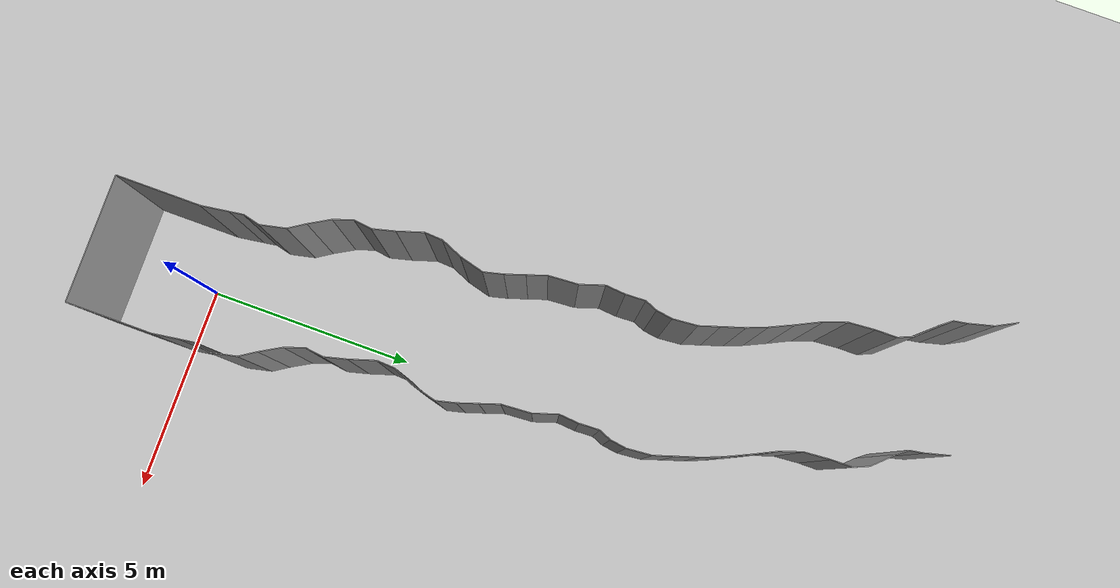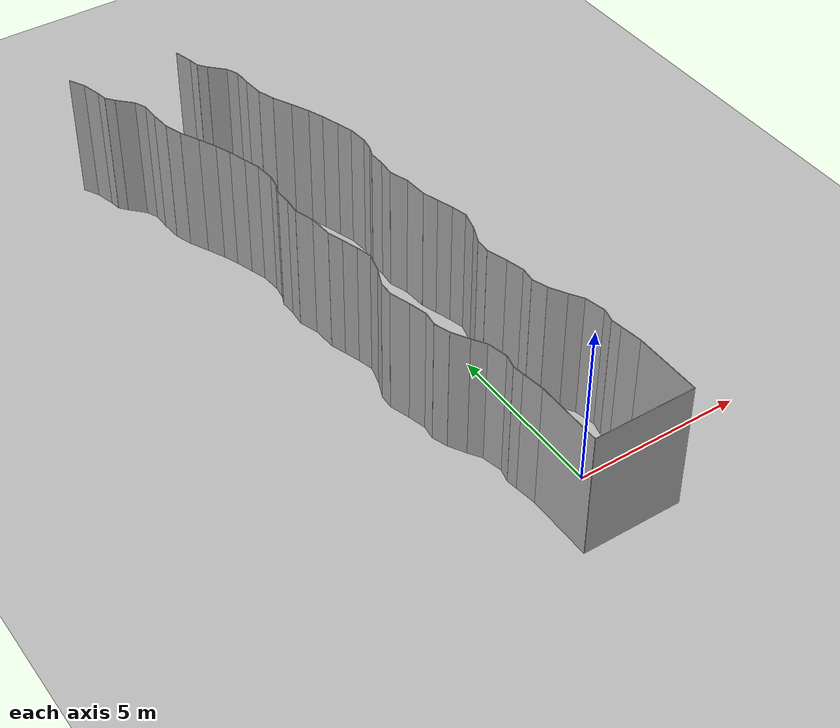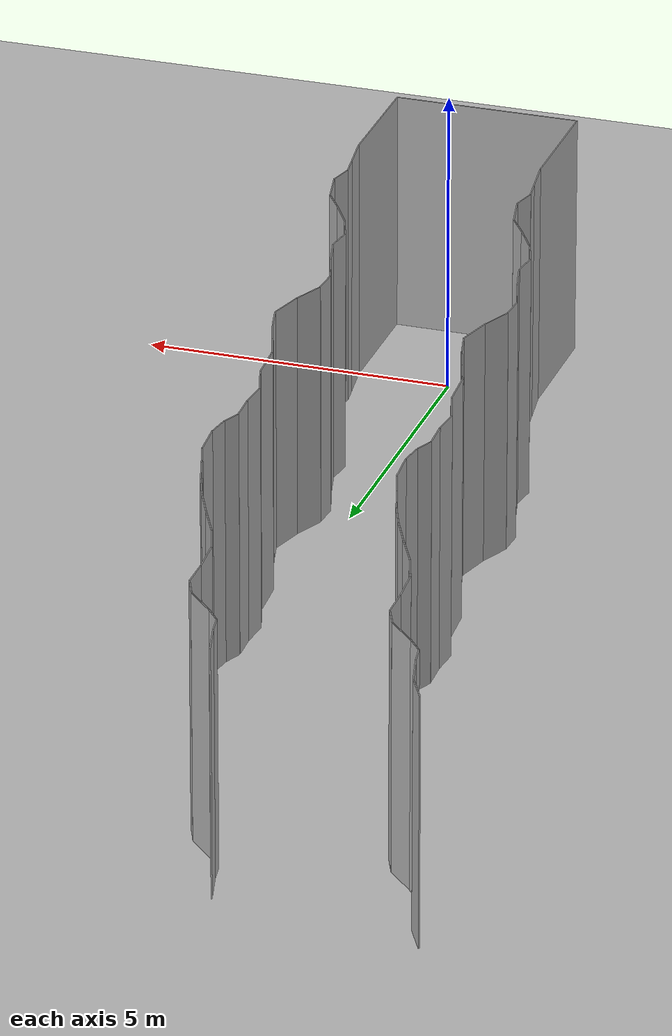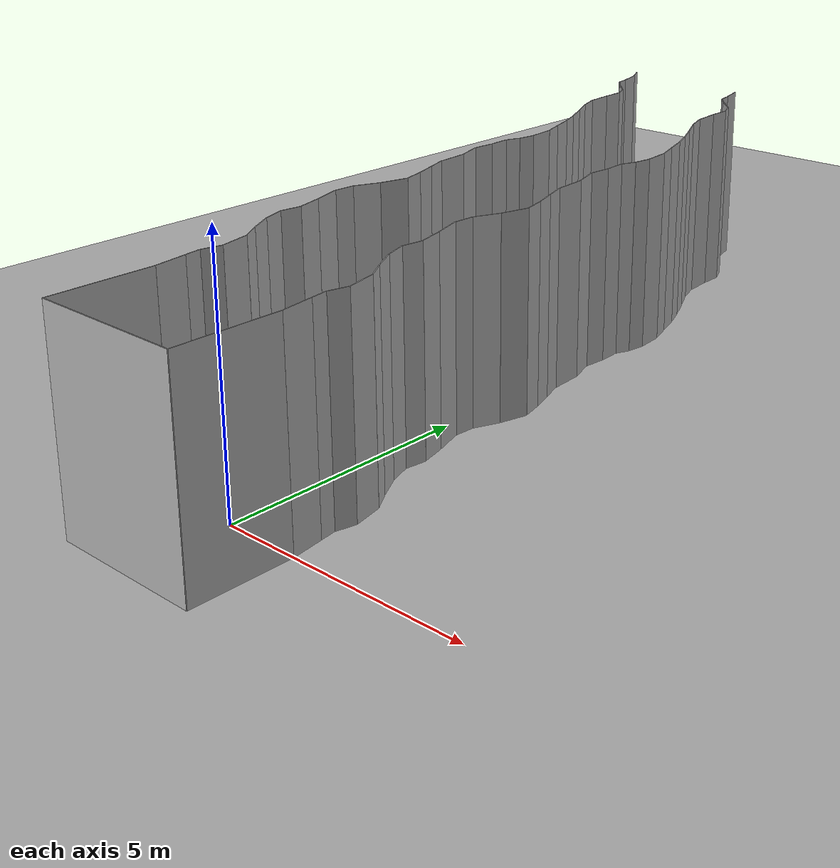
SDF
<sdf version="1.6">
 <world name="default">
  <model name="ground_plane">
   <static>1</static>
   <link name="link">
    <collision name="collision">
     <geometry><plane><normal>0 0 1</normal><size>200 200</size></plane></geometry>
     <surface><friction><ode><mu>100</mu><mu2>50</mu2></ode></friction></surface>
    </collision>
    <visual name="visual">
     <cast_shadows>0</cast_shadows>
     <geometry><plane><normal>0 0 1</normal><size>200 200</size></plane></geometry>
     <material>
      <script><uri>file://media/materials/scripts/gazebo.material</uri><name>Gazebo/Grey</name></script>
     </material>
    </visual>
   </link>
   <pose>0 100 0 0 -0 0</pose>
  </model>
  <model name="wall_back">
   <static>1</static>
   <pose>0.0 -2 2 0.0 0 0.0</pose>
   <link name="link">
    <collision name="collision"><geometry><box><size>3 0.02 4</size></box></geometry></collision>
    <visual name="visual">
     <material>
      <script><name>Gazebo/Grey</name><uri>file://media/materials/scripts/gazebo.material</uri></script>
     </material>
     <geometry><box><size>3 0.02 4</size></box></geometry>
    </visual>
   </link>
  </model>
  <model name="wall_left">
   <static>1</static>
   <pose>1.5 -1 2 0 0 0.00</pose>
   <link name="link">
    <collision name="collision"><geometry><box><size>0.02 2 4</size></box></geometry></collision>
    <visual name="visual">
     <material>
      <script><name>Gazebo/Grey</name><uri>file://media/materials/scripts/gazebo.material</uri></script>
     </material>
     <geometry><box><size>0.02 2 4</size></box></geometry>
    </visual>
   </link>
  </model>
  <model name="wall_right">
   <static>1</static>
   <pose>-1.5 -1 2 0 0 0.00</pose>
   <link name="link">
    <collision name="collision"><geometry><box><size>0.02 2 4</size></box></geometry></collision>
    <visual name="visual">
     <material>
      <script><name>Gazebo/Grey</name><uri>file://media/materials/scripts/gazebo.material</uri></script>
     </material>
     <geometry><box><size>0.02 2 4</size></box></geometry>
    </visual>
   </link>
  </model>
  <model name="wall_0">
   <static>1</static>
   <pose>-1.5460609407152022 0.32296351632783216 2 0 0 0.1416642949289696</pose>
   <link name="link">
    <collision name="collision"><geometry><box><size>0.02 0.652463158005 4</size></box></geometry></collision>
    <visual name="visual">
     <material>
      <script><name>Gazebo/Grey</name><uri>file://media/materials/scripts/gazebo.material</uri></script>
     </material>
     <geometry><box><size>0.02 0.652463158005 4</size></box></geometry>
    </visual>
   </link>
  </model>
  <model name="wall_1">
   <static>1</static>
   <pose>1.4539390592847978 0.32296351632783216 2 0 0 0.1416642949289696</pose>
   <link name="link">
    <collision name="collision"><geometry><box><size>0.02 0.652463158005 4</size></box></geometry></collision>
    <visual name="visual">
     <material>
      <script><name>Gazebo/Grey</name><uri>file://media/materials/scripts/gazebo.material</uri></script>
     </material>
     <geometry><box><size>0.02 0.652463158005 4</size></box></geometry>
    </visual>
   </link>
  </model>
  <model name="wall_2">
   <static>1</static>
   <pose>-1.6148269686521954 0.8086788979498543 2 0 0 0.13861276403303396</pose>
   <link name="link">
    <collision name="collision"><geometry><box><size>0.02 0.328655994271 4</size></box></geometry></collision>
    <visual name="visual">
     <material>
      <script><name>Gazebo/Grey</name><uri>file://media/materials/scripts/gazebo.material</uri></script>
     </material>
     <geometry><box><size>0.02 0.328655994271 4</size></box></geometry>
    </visual>
   </link>
  </model>
  <model name="wall_3">
   <static>1</static>
   <pose>1.3851730313478046 0.8086788979498543 2 0 0 0.13861276403303396</pose>
   <link name="link">
    <collision name="collision"><geometry><box><size>0.02 0.328655994271 4</size></box></geometry></collision>
    <visual name="visual">
     <material>
      <script><name>Gazebo/Grey</name><uri>file://media/materials/scripts/gazebo.material</uri></script>
     </material>
     <geometry><box><size>0.02 0.328655994271 4</size></box></geometry>
    </visual>
   </link>
  </model>
  <model name="wall_4">
   <static>1</static>
   <pose>-1.589722143437449 1.1666687135756386 2 0 0 -0.24015427331830977</pose>
   <link name="link">
    <collision name="collision"><geometry><box><size>0.02 0.402013158874 4</size></box></geometry></collision>
    <visual name="visual">
     <material>
      <script><name>Gazebo/Grey</name><uri>file://media/materials/scripts/gazebo.material</uri></script>
     </material>
     <geometry><box><size>0.02 0.402013158874 4</size></box></geometry>
    </visual>
   </link>
  </model>
  <model name="wall_5">
   <static>1</static>
   <pose>1.410277856562551 1.1666687135756386 2 0 0 -0.24015427331830977</pose>
   <link name="link">
    <collision name="collision"><geometry><box><size>0.02 0.402013158874 4</size></box></geometry></collision>
    <visual name="visual">
     <material>
      <script><name>Gazebo/Grey</name><uri>file://media/materials/scripts/gazebo.material</uri></script>
     </material>
     <geometry><box><size>0.02 0.402013158874 4</size></box></geometry>
    </visual>
   </link>
  </model>
  <model name="wall_6">
   <static>1</static>
   <pose>-1.6083255179823068 1.6642239231955354 2 0 0 0.21624578785075813</pose>
   <link name="link">
    <collision name="collision"><geometry><box><size>0.02 0.619052340118 4</size></box></geometry></collision>
    <visual name="visual">
     <material>
      <script><name>Gazebo/Grey</name><uri>file://media/materials/scripts/gazebo.material</uri></script>
     </material>
     <geometry><box><size>0.02 0.619052340118 4</size></box></geometry>
    </visual>
   </link>
  </model>
  <model name="wall_7">
   <static>1</static>
   <pose>1.3916744820176932 1.6642239231955354 2 0 0 0.21624578785075813</pose>
   <link name="link">
    <collision name="collision"><geometry><box><size>0.02 0.619052340118 4</size></box></geometry></collision>
    <visual name="visual">
     <material>
      <script><name>Gazebo/Grey</name><uri>file://media/materials/scripts/gazebo.material</uri></script>
     </material>
     <geometry><box><size>0.02 0.619052340118 4</size></box></geometry>
    </visual>
   </link>
  </model>
  <model name="wall_8">
   <static>1</static>
   <pose>-1.7974376571716444 2.155563262179853 2 0 0 0.5757594685593171</pose>
   <link name="link">
    <collision name="collision"><geometry><box><size>0.02 0.450707687735 4</size></box></geometry></collision>
    <visual name="visual">
     <material>
      <script><name>Gazebo/Grey</name><uri>file://media/materials/scripts/gazebo.material</uri></script>
     </material>
     <geometry><box><size>0.02 0.450707687735 4</size></box></geometry>
    </visual>
   </link>
  </model>
  <model name="wall_9">
   <static>1</static>
   <pose>1.2025623428283556 2.155563262179853 2 0 0 0.5757594685593171</pose>
   <link name="link">
    <collision name="collision"><geometry><box><size>0.02 0.450707687735 4</size></box></geometry></collision>
    <visual name="visual">
     <material>
      <script><name>Gazebo/Grey</name><uri>file://media/materials/scripts/gazebo.material</uri></script>
     </material>
     <geometry><box><size>0.02 0.450707687735 4</size></box></geometry>
    </visual>
   </link>
  </model>
  <model name="wall_10">
   <static>1</static>
   <pose>-2.060361808506583 2.589705850131935 2 0 0 0.5196270907715346</pose>
   <link name="link">
    <collision name="collision"><geometry><box><size>0.02 0.564790927983 4</size></box></geometry></collision>
    <visual name="visual">
     <material>
      <script><name>Gazebo/Grey</name><uri>file://media/materials/scripts/gazebo.material</uri></script>
     </material>
     <geometry><box><size>0.02 0.564790927983 4</size></box></geometry>
    </visual>
   </link>
  </model>
  <model name="wall_11">
   <static>1</static>
   <pose>0.9396381914934171 2.589705850131935 2 0 0 0.5196270907715346</pose>
   <link name="link">
    <collision name="collision"><geometry><box><size>0.02 0.564790927983 4</size></box></geometry></collision>
    <visual name="visual">
     <material>
      <script><name>Gazebo/Grey</name><uri>file://media/materials/scripts/gazebo.material</uri></script>
     </material>
     <geometry><box><size>0.02 0.564790927983 4</size></box></geometry>
    </visual>
   </link>
  </model>
  <model name="wall_12">
   <static>1</static>
   <pose>-2.277429173906964 3.0615047364817056 2 0 0 0.32683432171715104</pose>
   <link name="link">
    <collision name="collision"><geometry><box><size>0.02 0.47869735844 4</size></box></geometry></collision>
    <visual name="visual">
     <material>
      <script><name>Gazebo/Grey</name><uri>file://media/materials/scripts/gazebo.material</uri></script>
     </material>
     <geometry><box><size>0.02 0.47869735844 4</size></box></geometry>
    </visual>
   </link>
  </model>
  <model name="wall_13">
   <static>1</static>
   <pose>0.7225708260930359 3.0615047364817056 2 0 0 0.32683432171715104</pose>
   <link name="link">
    <collision name="collision"><geometry><box><size>0.02 0.47869735844 4</size></box></geometry></collision>
    <visual name="visual">
     <material>
      <script><name>Gazebo/Grey</name><uri>file://media/materials/scripts/gazebo.material</uri></script>
     </material>
     <geometry><box><size>0.02 0.47869735844 4</size></box></geometry>
    </visual>
   </link>
  </model>
  <model name="wall_14">
   <static>1</static>
   <pose>-2.3266724309295896 3.4999744161331265 2 0 0 -0.12958116203599063</pose>
   <link name="link">
    <collision name="collision"><geometry><box><size>0.02 0.427163901507 4</size></box></geometry></collision>
    <visual name="visual">
     <material>
      <script><name>Gazebo/Grey</name><uri>file://media/materials/scripts/gazebo.material</uri></script>
     </material>
     <geometry><box><size>0.02 0.427163901507 4</size></box></geometry>
    </visual>
   </link>
  </model>
  <model name="wall_15">
   <static>1</static>
   <pose>0.6733275690704104 3.4999744161331265 2 0 0 -0.12958116203599063</pose>
   <link name="link">
    <collision name="collision"><geometry><box><size>0.02 0.427163901507 4</size></box></geometry></collision>
    <visual name="visual">
     <material>
      <script><name>Gazebo/Grey</name><uri>file://media/materials/scripts/gazebo.material</uri></script>
     </material>
     <geometry><box><size>0.02 0.427163901507 4</size></box></geometry>
    </visual>
   </link>
  </model>
  <model name="wall_16">
   <static>1</static>
   <pose>-2.3666623829114717 3.9763269958883276 2 0 0 0.2501248180982221</pose>
   <link name="link">
    <collision name="collision"><geometry><box><size>0.02 0.546116876013 4</size></box></geometry></collision>
    <visual name="visual">
     <material>
      <script><name>Gazebo/Grey</name><uri>file://media/materials/scripts/gazebo.material</uri></script>
     </material>
     <geometry><box><size>0.02 0.546116876013 4</size></box></geometry>
    </visual>
   </link>
  </model>
  <model name="wall_17">
   <static>1</static>
   <pose>0.6333376170885283 3.9763269958883276 2 0 0 0.2501248180982221</pose>
   <link name="link">
    <collision name="collision"><geometry><box><size>0.02 0.546116876013 4</size></box></geometry></collision>
    <visual name="visual">
     <material>
      <script><name>Gazebo/Grey</name><uri>file://media/materials/scripts/gazebo.material</uri></script>
     </material>
     <geometry><box><size>0.02 0.546116876013 4</size></box></geometry>
    </visual>
   </link>
  </model>
  <model name="wall_18">
   <static>1</static>
   <pose>-2.528932439089104 4.541833459454673 2 0 0 0.3048088020196074</pose>
   <link name="link">
    <collision name="collision"><geometry><box><size>0.02 0.630975600825 4</size></box></geometry></collision>
    <visual name="visual">
     <material>
      <script><name>Gazebo/Grey</name><uri>file://media/materials/scripts/gazebo.material</uri></script>
     </material>
     <geometry><box><size>0.02 0.630975600825 4</size></box></geometry>
    </visual>
   </link>
  </model>
  <model name="wall_19">
   <static>1</static>
   <pose>0.4710675609108961 4.541833459454673 2 0 0 0.3048088020196074</pose>
   <link name="link">
    <collision name="collision"><geometry><box><size>0.02 0.630975600825 4</size></box></geometry></collision>
    <visual name="visual">
     <material>
      <script><name>Gazebo/Grey</name><uri>file://media/materials/scripts/gazebo.material</uri></script>
     </material>
     <geometry><box><size>0.02 0.630975600825 4</size></box></geometry>
    </visual>
   </link>
  </model>
  <model name="wall_20">
   <static>1</static>
   <pose>-2.6120455961579236 5.0558911683536 2 0 0 -0.05422861042586933</pose>
   <link name="link">
    <collision name="collision"><geometry><box><size>0.02 0.426852524881 4</size></box></geometry></collision>
    <visual name="visual">
     <material>
      <script><name>Gazebo/Grey</name><uri>file://media/materials/scripts/gazebo.material</uri></script>
     </material>
     <geometry><box><size>0.02 0.426852524881 4</size></box></geometry>
    </visual>
   </link>
  </model>
  <model name="wall_21">
   <static>1</static>
   <pose>0.38795440384207636 5.0558911683536 2 0 0 -0.05422861042586933</pose>
   <link name="link">
    <collision name="collision"><geometry><box><size>0.02 0.426852524881 4</size></box></geometry></collision>
    <visual name="visual">
     <material>
      <script><name>Gazebo/Grey</name><uri>file://media/materials/scripts/gazebo.material</uri></script>
     </material>
     <geometry><box><size>0.02 0.426852524881 4</size></box></geometry>
    </visual>
   </link>
  </model>
  <model name="wall_22">
   <static>1</static>
   <pose>-2.494607655139422 5.517572227282669 2 0 0 -0.4026479095443458</pose>
   <link name="link">
    <collision name="collision"><geometry><box><size>0.02 0.540350745379 4</size></box></geometry></collision>
    <visual name="visual">
     <material>
      <script><name>Gazebo/Grey</name><uri>file://media/materials/scripts/gazebo.material</uri></script>
     </material>
     <geometry><box><size>0.02 0.540350745379 4</size></box></geometry>
    </visual>
   </link>
  </model>
  <model name="wall_23">
   <static>1</static>
   <pose>0.5053923448605779 5.517572227282669 2 0 0 -0.4026479095443458</pose>
   <link name="link">
    <collision name="collision"><geometry><box><size>0.02 0.540350745379 4</size></box></geometry></collision>
    <visual name="visual">
     <material>
      <script><name>Gazebo/Grey</name><uri>file://media/materials/scripts/gazebo.material</uri></script>
     </material>
     <geometry><box><size>0.02 0.540350745379 4</size></box></geometry>
    </visual>
   </link>
  </model>
  <model name="wall_24">
   <static>1</static>
   <pose>-2.312584351391815 6.052139907059537 2 0 0 -0.26023368327982066</pose>
   <link name="link">
    <collision name="collision"><geometry><box><size>0.02 0.591928597854 4</size></box></geometry></collision>
    <visual name="visual">
     <material>
      <script><name>Gazebo/Grey</name><uri>file://media/materials/scripts/gazebo.material</uri></script>
     </material>
     <geometry><box><size>0.02 0.591928597854 4</size></box></geometry>
    </visual>
   </link>
  </model>
  <model name="wall_25">
   <static>1</static>
   <pose>0.687415648608185 6.052139907059537 2 0 0 -0.26023368327982066</pose>
   <link name="link">
    <collision name="collision"><geometry><box><size>0.02 0.591928597854 4</size></box></geometry></collision>
    <visual name="visual">
     <material>
      <script><name>Gazebo/Grey</name><uri>file://media/materials/scripts/gazebo.material</uri></script>
     </material>
     <geometry><box><size>0.02 0.591928597854 4</size></box></geometry>
    </visual>
   </link>
  </model>
  <model name="wall_26">
   <static>1</static>
   <pose>-2.29260806861817 6.564511362398333 2 0 0 0.24324891789638955</pose>
   <link name="link">
    <collision name="collision"><geometry><box><size>0.02 0.466477450572 4</size></box></geometry></collision>
    <visual name="visual">
     <material>
      <script><name>Gazebo/Grey</name><uri>file://media/materials/scripts/gazebo.material</uri></script>
     </material>
     <geometry><box><size>0.02 0.466477450572 4</size></box></geometry>
    </visual>
   </link>
  </model>
  <model name="wall_27">
   <static>1</static>
   <pose>0.7073919313818302 6.564511362398333 2 0 0 0.24324891789638955</pose>
   <link name="link">
    <collision name="collision"><geometry><box><size>0.02 0.466477450572 4</size></box></geometry></collision>
    <visual name="visual">
     <material>
      <script><name>Gazebo/Grey</name><uri>file://media/materials/scripts/gazebo.material</uri></script>
     </material>
     <geometry><box><size>0.02 0.466477450572 4</size></box></geometry>
    </visual>
   </link>
  </model>
  <model name="wall_28">
   <static>1</static>
   <pose>-2.4247002136703846 7.022733952686844 2 0 0 0.3164289197949313</pose>
   <link name="link">
    <collision name="collision"><geometry><box><size>0.02 0.487924699925 4</size></box></geometry></collision>
    <visual name="visual">
     <material>
      <script><name>Gazebo/Grey</name><uri>file://media/materials/scripts/gazebo.material</uri></script>
     </material>
     <geometry><box><size>0.02 0.487924699925 4</size></box></geometry>
    </visual>
   </link>
  </model>
  <model name="wall_29">
   <static>1</static>
   <pose>0.5752997863296154 7.022733952686844 2 0 0 0.3164289197949313</pose>
   <link name="link">
    <collision name="collision"><geometry><box><size>0.02 0.487924699925 4</size></box></geometry></collision>
    <visual name="visual">
     <material>
      <script><name>Gazebo/Grey</name><uri>file://media/materials/scripts/gazebo.material</uri></script>
     </material>
     <geometry><box><size>0.02 0.487924699925 4</size></box></geometry>
    </visual>
   </link>
  </model>
  <model name="wall_30">
   <static>1</static>
   <pose>-2.57577664151554 7.4826767092342115 2 0 0 0.31831648618734026</pose>
   <link name="link">
    <collision name="collision"><geometry><box><size>0.02 0.480314186092 4</size></box></geometry></collision>
    <visual name="visual">
     <material>
      <script><name>Gazebo/Grey</name><uri>file://media/materials/scripts/gazebo.material</uri></script>
     </material>
     <geometry><box><size>0.02 0.480314186092 4</size></box></geometry>
    </visual>
   </link>
  </model>
  <model name="wall_31">
   <static>1</static>
   <pose>0.4242233584844599 7.4826767092342115 2 0 0 0.31831648618734026</pose>
   <link name="link">
    <collision name="collision"><geometry><box><size>0.02 0.480314186092 4</size></box></geometry></collision>
    <visual name="visual">
     <material>
      <script><name>Gazebo/Grey</name><uri>file://media/materials/scripts/gazebo.material</uri></script>
     </material>
     <geometry><box><size>0.02 0.480314186092 4</size></box></geometry>
    </visual>
   </link>
  </model>
  <model name="wall_32">
   <static>1</static>
   <pose>-2.6733809807644473 8.05867889216944 2 0 0 0.0644183986733915</pose>
   <link name="link">
    <collision name="collision"><geometry><box><size>0.02 0.697265643314 4</size></box></geometry></collision>
    <visual name="visual">
     <material>
      <script><name>Gazebo/Grey</name><uri>file://media/materials/scripts/gazebo.material</uri></script>
     </material>
     <geometry><box><size>0.02 0.697265643314 4</size></box></geometry>
    </visual>
   </link>
  </model>
  <model name="wall_33">
   <static>1</static>
   <pose>0.3266190192355527 8.05867889216944 2 0 0 0.0644183986733915</pose>
   <link name="link">
    <collision name="collision"><geometry><box><size>0.02 0.697265643314 4</size></box></geometry></collision>
    <visual name="visual">
     <material>
      <script><name>Gazebo/Grey</name><uri>file://media/materials/scripts/gazebo.material</uri></script>
     </material>
     <geometry><box><size>0.02 0.697265643314 4</size></box></geometry>
    </visual>
   </link>
  </model>
  <model name="wall_34">
   <static>1</static>
   <pose>-2.787935674579615 8.689447104098766 2 0 0 0.3148164376250054</pose>
   <link name="link">
    <collision name="collision"><geometry><box><size>0.02 0.594957236797 4</size></box></geometry></collision>
    <visual name="visual">
     <material>
      <script><name>Gazebo/Grey</name><uri>file://media/materials/scripts/gazebo.material</uri></script>
     </material>
     <geometry><box><size>0.02 0.594957236797 4</size></box></geometry>
    </visual>
   </link>
  </model>
  <model name="wall_35">
   <static>1</static>
   <pose>0.2120643254203851 8.689447104098766 2 0 0 0.3148164376250054</pose>
   <link name="link">
    <collision name="collision"><geometry><box><size>0.02 0.594957236797 4</size></box></geometry></collision>
    <visual name="visual">
     <material>
      <script><name>Gazebo/Grey</name><uri>file://media/materials/scripts/gazebo.material</uri></script>
     </material>
     <geometry><box><size>0.02 0.594957236797 4</size></box></geometry>
    </visual>
   </link>
  </model>
  <model name="wall_36">
   <static>1</static>
   <pose>-2.8603803701452333 9.20700265309586 2 0 0 -0.08360274740637143</pose>
   <link name="link">
    <collision name="collision"><geometry><box><size>0.02 0.471039272498 4</size></box></geometry></collision>
    <visual name="visual">
     <material>
      <script><name>Gazebo/Grey</name><uri>file://media/materials/scripts/gazebo.material</uri></script>
     </material>
     <geometry><box><size>0.02 0.471039272498 4</size></box></geometry>
    </visual>
   </link>
  </model>
  <model name="wall_37">
   <static>1</static>
   <pose>0.13961962985476672 9.20700265309586 2 0 0 -0.08360274740637143</pose>
   <link name="link">
    <collision name="collision"><geometry><box><size>0.02 0.471039272498 4</size></box></geometry></collision>
    <visual name="visual">
     <material>
      <script><name>Gazebo/Grey</name><uri>file://media/materials/scripts/gazebo.material</uri></script>
     </material>
     <geometry><box><size>0.02 0.471039272498 4</size></box></geometry>
    </visual>
   </link>
  </model>
  <model name="wall_38">
   <static>1</static>
   <pose>-2.849914418016406 9.676256551270113 2 0 0 0.03920794430056313</pose>
   <link name="link">
    <collision name="collision"><geometry><box><size>0.02 0.469474517436 4</size></box></geometry></collision>
    <visual name="visual">
     <material>
      <script><name>Gazebo/Grey</name><uri>file://media/materials/scripts/gazebo.material</uri></script>
     </material>
     <geometry><box><size>0.02 0.469474517436 4</size></box></geometry>
    </visual>
   </link>
  </model>
  <model name="wall_39">
   <static>1</static>
   <pose>0.150085581983594 9.676256551270113 2 0 0 0.03920794430056313</pose>
   <link name="link">
    <collision name="collision"><geometry><box><size>0.02 0.469474517436 4</size></box></geometry></collision>
    <visual name="visual">
     <material>
      <script><name>Gazebo/Grey</name><uri>file://media/materials/scripts/gazebo.material</uri></script>
     </material>
     <geometry><box><size>0.02 0.469474517436 4</size></box></geometry>
    </visual>
   </link>
  </model>
  <model name="wall_40">
   <static>1</static>
   <pose>-2.799212834921208 10.056202752280775 2 0 0 -0.3908222059121269</pose>
   <link name="link">
    <collision name="collision"><geometry><box><size>0.02 0.314492646276 4</size></box></geometry></collision>
    <visual name="visual">
     <material>
      <script><name>Gazebo/Grey</name><uri>file://media/materials/scripts/gazebo.material</uri></script>
     </material>
     <geometry><box><size>0.02 0.314492646276 4</size></box></geometry>
    </visual>
   </link>
  </model>
  <model name="wall_41">
   <static>1</static>
   <pose>0.20078716507879202 10.056202752280775 2 0 0 -0.3908222059121269</pose>
   <link name="link">
    <collision name="collision"><geometry><box><size>0.02 0.314492646276 4</size></box></geometry></collision>
    <visual name="visual">
     <material>
      <script><name>Gazebo/Grey</name><uri>file://media/materials/scripts/gazebo.material</uri></script>
     </material>
     <geometry><box><size>0.02 0.314492646276 4</size></box></geometry>
    </visual>
   </link>
  </model>
  <model name="wall_42">
   <static>1</static>
   <pose>-2.710360181657193 10.393337643875538 2 0 0 -0.1498488573550786</pose>
   <link name="link">
    <collision name="collision"><geometry><box><size>0.02 0.387837331623 4</size></box></geometry></collision>
    <visual name="visual">
     <material>
      <script><name>Gazebo/Grey</name><uri>file://media/materials/scripts/gazebo.material</uri></script>
     </material>
     <geometry><box><size>0.02 0.387837331623 4</size></box></geometry>
    </visual>
   </link>
  </model>
  <model name="wall_43">
   <static>1</static>
   <pose>0.28963981834280705 10.393337643875538 2 0 0 -0.1498488573550786</pose>
   <link name="link">
    <collision name="collision"><geometry><box><size>0.02 0.387837331623 4</size></box></geometry></collision>
    <visual name="visual">
     <material>
      <script><name>Gazebo/Grey</name><uri>file://media/materials/scripts/gazebo.material</uri></script>
     </material>
     <geometry><box><size>0.02 0.387837331623 4</size></box></geometry>
    </visual>
   </link>
  </model>
  <model name="wall_44">
   <static>1</static>
   <pose>-2.70590756374895 10.877294180496323 2 0 0 0.08363852214404005</pose>
   <link name="link">
    <collision name="collision"><geometry><box><size>0.02 0.586472089891 4</size></box></geometry></collision>
    <visual name="visual">
     <material>
      <script><name>Gazebo/Grey</name><uri>file://media/materials/scripts/gazebo.material</uri></script>
     </material>
     <geometry><box><size>0.02 0.586472089891 4</size></box></geometry>
    </visual>
   </link>
  </model>
  <model name="wall_45">
   <static>1</static>
   <pose>0.29409243625104997 10.877294180496323 2 0 0 0.08363852214404005</pose>
   <link name="link">
    <collision name="collision"><geometry><box><size>0.02 0.586472089891 4</size></box></geometry></collision>
    <visual name="visual">
     <material>
      <script><name>Gazebo/Grey</name><uri>file://media/materials/scripts/gazebo.material</uri></script>
     </material>
     <geometry><box><size>0.02 0.586472089891 4</size></box></geometry>
    </visual>
   </link>
  </model>
  <model name="wall_46">
   <static>1</static>
   <pose>-2.805017338441254 11.402402055324732 2 0 0 0.3100360287135226</pose>
   <link name="link">
    <collision name="collision"><geometry><box><size>0.02 0.489113435858 4</size></box></geometry></collision>
    <visual name="visual">
     <material>
      <script><name>Gazebo/Grey</name><uri>file://media/materials/scripts/gazebo.material</uri></script>
     </material>
     <geometry><box><size>0.02 0.489113435858 4</size></box></geometry>
    </visual>
   </link>
  </model>
  <model name="wall_47">
   <static>1</static>
   <pose>0.194982661558746 11.402402055324732 2 0 0 0.3100360287135226</pose>
   <link name="link">
    <collision name="collision"><geometry><box><size>0.02 0.489113435858 4</size></box></geometry></collision>
    <visual name="visual">
     <material>
      <script><name>Gazebo/Grey</name><uri>file://media/materials/scripts/gazebo.material</uri></script>
     </material>
     <geometry><box><size>0.02 0.489113435858 4</size></box></geometry>
    </visual>
   </link>
  </model>
  <model name="wall_48">
   <static>1</static>
   <pose>-2.963712063873502 11.900903078463639 2 0 0 0.30658809499920986</pose>
   <link name="link">
    <collision name="collision"><geometry><box><size>0.02 0.557190718628 4</size></box></geometry></collision>
    <visual name="visual">
     <material>
      <script><name>Gazebo/Grey</name><uri>file://media/materials/scripts/gazebo.material</uri></script>
     </material>
     <geometry><box><size>0.02 0.557190718628 4</size></box></geometry>
    </visual>
   </link>
  </model>
  <model name="wall_49">
   <static>1</static>
   <pose>0.03628793612649783 11.900903078463639 2 0 0 0.30658809499920986</pose>
   <link name="link">
    <collision name="collision"><geometry><box><size>0.02 0.557190718628 4</size></box></geometry></collision>
    <visual name="visual">
     <material>
      <script><name>Gazebo/Grey</name><uri>file://media/materials/scripts/gazebo.material</uri></script>
     </material>
     <geometry><box><size>0.02 0.557190718628 4</size></box></geometry>
    </visual>
   </link>
  </model>
  <model name="wall_50">
   <static>1</static>
   <pose>-3.135838636373804 12.392265346257169 2 0 0 0.37185110163365315</pose>
   <link name="link">
    <collision name="collision"><geometry><box><size>0.02 0.48463819518 4</size></box></geometry></collision>
    <visual name="visual">
     <material>
      <script><name>Gazebo/Grey</name><uri>file://media/materials/scripts/gazebo.material</uri></script>
     </material>
     <geometry><box><size>0.02 0.48463819518 4</size></box></geometry>
    </visual>
   </link>
  </model>
  <model name="wall_51">
   <static>1</static>
   <pose>-0.135838636373804 12.392265346257169 2 0 0 0.37185110163365315</pose>
   <link name="link">
    <collision name="collision"><geometry><box><size>0.02 0.48463819518 4</size></box></geometry></collision>
    <visual name="visual">
     <material>
      <script><name>Gazebo/Grey</name><uri>file://media/materials/scripts/gazebo.material</uri></script>
     </material>
     <geometry><box><size>0.02 0.48463819518 4</size></box></geometry>
    </visual>
   </link>
  </model>
  <model name="wall_52">
   <static>1</static>
   <pose>-3.3468556074396427 12.882745894366916 2 0 0 0.43487454426347394</pose>
   <link name="link">
    <collision name="collision"><geometry><box><size>0.02 0.583781528168 4</size></box></geometry></collision>
    <visual name="visual">
     <material>
      <script><name>Gazebo/Grey</name><uri>file://media/materials/scripts/gazebo.material</uri></script>
     </material>
     <geometry><box><size>0.02 0.583781528168 4</size></box></geometry>
    </visual>
   </link>
  </model>
  <model name="wall_53">
   <static>1</static>
   <pose>-0.3468556074396427 12.882745894366916 2 0 0 0.43487454426347394</pose>
   <link name="link">
    <collision name="collision"><geometry><box><size>0.02 0.583781528168 4</size></box></geometry></collision>
    <visual name="visual">
     <material>
      <script><name>Gazebo/Grey</name><uri>file://media/materials/scripts/gazebo.material</uri></script>
     </material>
     <geometry><box><size>0.02 0.583781528168 4</size></box></geometry>
    </visual>
   </link>
  </model>
  <model name="wall_54">
   <static>1</static>
   <pose>-3.607325002306965 13.427539497175706 2 0 0 0.4563695023232326</pose>
   <link name="link">
    <collision name="collision"><geometry><box><size>0.02 0.624003968183 4</size></box></geometry></collision>
    <visual name="visual">
     <material>
      <script><name>Gazebo/Grey</name><uri>file://media/materials/scripts/gazebo.material</uri></script>
     </material>
     <geometry><box><size>0.02 0.624003968183 4</size></box></geometry>
    </visual>
   </link>
  </model>
  <model name="wall_55">
   <static>1</static>
   <pose>-0.6073250023069652 13.427539497175706 2 0 0 0.4563695023232326</pose>
   <link name="link">
    <collision name="collision"><geometry><box><size>0.02 0.624003968183 4</size></box></geometry></collision>
    <visual name="visual">
     <material>
      <script><name>Gazebo/Grey</name><uri>file://media/materials/scripts/gazebo.material</uri></script>
     </material>
     <geometry><box><size>0.02 0.624003968183 4</size></box></geometry>
    </visual>
   </link>
  </model>
  <model name="wall_56">
   <static>1</static>
   <pose>-3.8318079304960557 13.960775870261042 2 0 0 0.33095686386204876</pose>
   <link name="link">
    <collision name="collision"><geometry><box><size>0.02 0.535384719834 4</size></box></geometry></collision>
    <visual name="visual">
     <material>
      <script><name>Gazebo/Grey</name><uri>file://media/materials/scripts/gazebo.material</uri></script>
     </material>
     <geometry><box><size>0.02 0.535384719834 4</size></box></geometry>
    </visual>
   </link>
  </model>
  <model name="wall_57">
   <static>1</static>
   <pose>-0.8318079304960557 13.960775870261042 2 0 0 0.33095686386204876</pose>
   <link name="link">
    <collision name="collision"><geometry><box><size>0.02 0.535384719834 4</size></box></geometry></collision>
    <visual name="visual">
     <material>
      <script><name>Gazebo/Grey</name><uri>file://media/materials/scripts/gazebo.material</uri></script>
     </material>
     <geometry><box><size>0.02 0.535384719834 4</size></box></geometry>
    </visual>
   </link>
  </model>
  <model name="wall_58">
   <static>1</static>
   <pose>-3.9423362156262356 14.521196597911242 2 0 0 0.0764713615815546</pose>
   <link name="link">
    <collision name="collision"><geometry><box><size>0.02 0.6163122549 4</size></box></geometry></collision>
    <visual name="visual">
     <material>
      <script><name>Gazebo/Grey</name><uri>file://media/materials/scripts/gazebo.material</uri></script>
     </material>
     <geometry><box><size>0.02 0.6163122549 4</size></box></geometry>
    </visual>
   </link>
  </model>
  <model name="wall_59">
   <static>1</static>
   <pose>-0.9423362156262356 14.521196597911242 2 0 0 0.0764713615815546</pose>
   <link name="link">
    <collision name="collision"><geometry><box><size>0.02 0.6163122549 4</size></box></geometry></collision>
    <visual name="visual">
     <material>
      <script><name>Gazebo/Grey</name><uri>file://media/materials/scripts/gazebo.material</uri></script>
     </material>
     <geometry><box><size>0.02 0.6163122549 4</size></box></geometry>
    </visual>
   </link>
  </model>
  <model name="wall_60">
   <static>1</static>
   <pose>-3.9681822014911536 15.080284226030454 2 0 0 0.009148015487032592</pose>
   <link name="link">
    <collision name="collision"><geometry><box><size>0.02 0.503685255638 4</size></box></geometry></collision>
    <visual name="visual">
     <material>
      <script><name>Gazebo/Grey</name><uri>file://media/materials/scripts/gazebo.material</uri></script>
     </material>
     <geometry><box><size>0.02 0.503685255638 4</size></box></geometry>
    </visual>
   </link>
  </model>
  <model name="wall_61">
   <static>1</static>
   <pose>-0.9681822014911536 15.080284226030454 2 0 0 0.009148015487032592</pose>
   <link name="link">
    <collision name="collision"><geometry><box><size>0.02 0.503685255638 4</size></box></geometry></collision>
    <visual name="visual">
     <material>
      <script><name>Gazebo/Grey</name><uri>file://media/materials/scripts/gazebo.material</uri></script>
     </material>
     <geometry><box><size>0.02 0.503685255638 4</size></box></geometry>
    </visual>
   </link>
  </model>
  <model name="wall_62">
   <static>1</static>
   <pose>-4.046246676233365 15.508876037837641 2 0 0 0.40492275784365145</pose>
   <link name="link">
    <collision name="collision"><geometry><box><size>0.02 0.384622801314 4</size></box></geometry></collision>
    <visual name="visual">
     <material>
      <script><name>Gazebo/Grey</name><uri>file://media/materials/scripts/gazebo.material</uri></script>
     </material>
     <geometry><box><size>0.02 0.384622801314 4</size></box></geometry>
    </visual>
   </link>
  </model>
  <model name="wall_63">
   <static>1</static>
   <pose>-1.0462466762333653 15.508876037837641 2 0 0 0.40492275784365145</pose>
   <link name="link">
    <collision name="collision"><geometry><box><size>0.02 0.384622801314 4</size></box></geometry></collision>
    <visual name="visual">
     <material>
      <script><name>Gazebo/Grey</name><uri>file://media/materials/scripts/gazebo.material</uri></script>
     </material>
     <geometry><box><size>0.02 0.384622801314 4</size></box></geometry>
    </visual>
   </link>
  </model>
  <model name="wall_64">
   <static>1</static>
   <pose>-4.329903083170128 15.902137680287844 2 0 0 0.7651224141522974</pose>
   <link name="link">
    <collision name="collision"><geometry><box><size>0.02 0.600312348063 4</size></box></geometry></collision>
    <visual name="visual">
     <material>
      <script><name>Gazebo/Grey</name><uri>file://media/materials/scripts/gazebo.material</uri></script>
     </material>
     <geometry><box><size>0.02 0.600312348063 4</size></box></geometry>
    </visual>
   </link>
  </model>
  <model name="wall_65">
   <static>1</static>
   <pose>-1.3299030831701284 15.902137680287844 2 0 0 0.7651224141522974</pose>
   <link name="link">
    <collision name="collision"><geometry><box><size>0.02 0.600312348063 4</size></box></geometry></collision>
    <visual name="visual">
     <material>
      <script><name>Gazebo/Grey</name><uri>file://media/materials/scripts/gazebo.material</uri></script>
     </material>
     <geometry><box><size>0.02 0.600312348063 4</size></box></geometry>
    </visual>
   </link>
  </model>
  <model name="wall_66">
   <static>1</static>
   <pose>-4.635390261706353 16.243336536821385 2 0 0 0.6640586552177749</pose>
   <link name="link">
    <collision name="collision"><geometry><box><size>0.02 0.316691715871 4</size></box></geometry></collision>
    <visual name="visual">
     <material>
      <script><name>Gazebo/Grey</name><uri>file://media/materials/scripts/gazebo.material</uri></script>
     </material>
     <geometry><box><size>0.02 0.316691715871 4</size></box></geometry>
    </visual>
   </link>
  </model>
  <model name="wall_67">
   <static>1</static>
   <pose>-1.6353902617063527 16.243336536821385 2 0 0 0.6640586552177749</pose>
   <link name="link">
    <collision name="collision"><geometry><box><size>0.02 0.316691715871 4</size></box></geometry></collision>
    <visual name="visual">
     <material>
      <script><name>Gazebo/Grey</name><uri>file://media/materials/scripts/gazebo.material</uri></script>
     </material>
     <geometry><box><size>0.02 0.316691715871 4</size></box></geometry>
    </visual>
   </link>
  </model>
  <model name="wall_68">
   <static>1</static>
   <pose>-4.7603680987373185 16.52537694095131 2 0 0 0.17232860914291084</pose>
   <link name="link">
    <collision name="collision"><geometry><box><size>0.02 0.319418114319 4</size></box></geometry></collision>
    <visual name="visual">
     <material>
      <script><name>Gazebo/Grey</name><uri>file://media/materials/scripts/gazebo.material</uri></script>
     </material>
     <geometry><box><size>0.02 0.319418114319 4</size></box></geometry>
    </visual>
   </link>
  </model>
  <model name="wall_69">
   <static>1</static>
   <pose>-1.7603680987373185 16.52537694095131 2 0 0 0.17232860914291084</pose>
   <link name="link">
    <collision name="collision"><geometry><box><size>0.02 0.319418114319 4</size></box></geometry></collision>
    <visual name="visual">
     <material>
      <script><name>Gazebo/Grey</name><uri>file://media/materials/scripts/gazebo.material</uri></script>
     </material>
     <geometry><box><size>0.02 0.319418114319 4</size></box></geometry>
    </visual>
   </link>
  </model>
  <model name="wall_70">
   <static>1</static>
   <pose>-4.8622504326203755 16.96942534129222 2 0 0 0.2542133009002713</pose>
   <link name="link">
    <collision name="collision"><geometry><box><size>0.02 0.592450367348 4</size></box></geometry></collision>
    <visual name="visual">
     <material>
      <script><name>Gazebo/Grey</name><uri>file://media/materials/scripts/gazebo.material</uri></script>
     </material>
     <geometry><box><size>0.02 0.592450367348 4</size></box></geometry>
    </visual>
   </link>
  </model>
  <model name="wall_71">
   <static>1</static>
   <pose>-1.8622504326203755 16.96942534129222 2 0 0 0.2542133009002713</pose>
   <link name="link">
    <collision name="collision"><geometry><box><size>0.02 0.592450367348 4</size></box></geometry></collision>
    <visual name="visual">
     <material>
      <script><name>Gazebo/Grey</name><uri>file://media/materials/scripts/gazebo.material</uri></script>
     </material>
     <geometry><box><size>0.02 0.592450367348 4</size></box></geometry>
    </visual>
   </link>
  </model>
  <model name="wall_72">
   <static>1</static>
   <pose>-5.060792403642577 17.491723254828283 2 0 0 0.4846432768960352</pose>
   <link name="link">
    <collision name="collision"><geometry><box><size>0.02 0.53250906812 4</size></box></geometry></collision>
    <visual name="visual">
     <material>
      <script><name>Gazebo/Grey</name><uri>file://media/materials/scripts/gazebo.material</uri></script>
     </material>
     <geometry><box><size>0.02 0.53250906812 4</size></box></geometry>
    </visual>
   </link>
  </model>
 </world>
</sdf>
